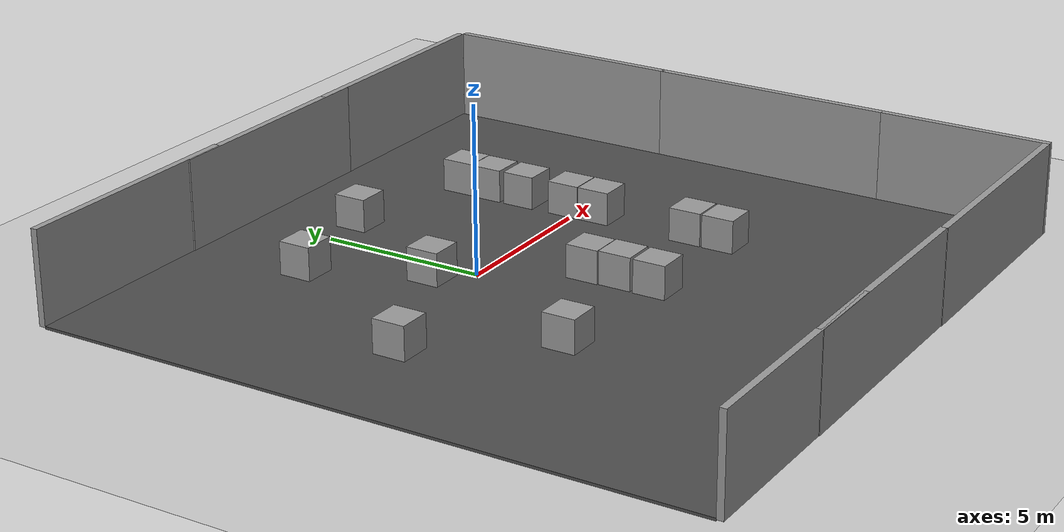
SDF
<sdf version="1.6">
 <world name="default">
  <light name="sun" type="directional">
   <pose>0 0 10 0 -0 0</pose>
   <diffuse>0.8 0.8 0.8 1</diffuse>
   <specular>0.1 0.1 0.1 1</specular>
   <attenuation>
    <range>1000</range>
    <constant>0.9</constant>
    <linear>0.01</linear>
    <quadratic>0.001</quadratic>
   </attenuation>
   <direction>-0.5 0.5 -1</direction>
  </light>
  <model name="ground_plane">
   <static>1</static>
   <link name="link">
    <collision name="collision">
     <geometry><plane><normal>0 0 1</normal><size>100 100</size></plane></geometry>
     <surface><friction><ode><mu>100</mu><mu2>50</mu2></ode></friction></surface>
    </collision>
    <visual name="visual">
     <cast_shadows>0</cast_shadows>
     <geometry><plane><normal>0 0 1</normal><size>100 100</size></plane></geometry>
     <material>
      <script><uri>file://media/materials/scripts/gazebo.material</uri><name>Gazebo/Grey</name></script>
     </material>
    </visual>
   </link>
  </model>
  <gravity>0 0 -9.8</gravity>
  <magnetic_field>6e-06 2.3e-05 -4.2e-05</magnetic_field>
  <atmosphere type="adiabatic"/>
  <physics name="default_physics" default="0" type="ode">
   <max_step_size>0.001</max_step_size>
   <real_time_factor>1</real_time_factor>
   <real_time_update_rate>1000</real_time_update_rate>
  </physics>
  <scene><ambient>0.4 0.4 0.4 1</ambient><background>0.7 0.7 0.7 1</background><shadows>1</shadows></scene>
  <spherical_coordinates>
   <surface_model>EARTH_WGS84</surface_model>
   <latitude_deg>0</latitude_deg>
   <longitude_deg>0</longitude_deg>
   <elevation>0</elevation>
   <heading_deg>0</heading_deg>
  </spherical_coordinates>
  <model name="grey_wall">
   <static>1</static>
   <link name="link">
    <pose>0 0 1.4 0 -0 0</pose>
    <collision name="collision"><geometry><box><size>7.5 0.2 2.8</size></box></geometry></collision>
    <visual name="visual">
     <cast_shadows>0</cast_shadows>
     <geometry><box><size>7.5 0.2 2.8</size></box></geometry>
     <material>
      <script>
       <uri>model://grey_wall/materials/scripts</uri>
       <uri>model://grey_wall/materials/textures</uri>
       <name>vrc/grey_wall</name>
      </script>
     </material>
    </visual>
   </link>
   <pose>0.992269 7.87079 0 0 -0 0</pose>
  </model>
  <model name="grey_wall_clone">
   <static>1</static>
   <link name="link">
    <pose>0 0 1.4 0 -0 0</pose>
    <collision name="collision"><geometry><box><size>7.5 0.2 2.8</size></box></geometry></collision>
    <visual name="visual">
     <cast_shadows>0</cast_shadows>
     <geometry><box><size>7.5 0.2 2.8</size></box></geometry>
     <material>
      <script>
       <uri>model://grey_wall/materials/scripts</uri>
       <uri>model://grey_wall/materials/textures</uri>
       <name>vrc/grey_wall</name>
      </script>
     </material>
    </visual>
   </link>
   <pose>7.36653 7.87416 0 0 -0 0</pose>
  </model>
  <model name="asphalt_plane">
   <static>1</static>
   <link name="link">
    <collision name="collision"><geometry><box><size>20 20 0.1</size></box></geometry></collision>
    <visual name="visual">
     <cast_shadows>0</cast_shadows>
     <geometry><box><size>20 20 0.1</size></box></geometry>
     <material>
      <script>
       <uri>model://asphalt_plane/materials/scripts</uri>
       <uri>model://asphalt_plane/materials/textures</uri>
       <name>vrc/asphalt</name>
      </script>
     </material>
    </visual>
   </link>
   <pose>1.10617 -2.19977 0 0 -0 0</pose>
  </model>
  <model name="grey_wall_clone_0">
   <static>1</static>
   <link name="link">
    <pose>0 0 1.4 0 -0 0</pose>
    <collision name="collision"><geometry><box><size>7.5 0.2 2.8</size></box></geometry></collision>
    <visual name="visual">
     <cast_shadows>0</cast_shadows>
     <geometry><box><size>7.5 0.2 2.8</size></box></geometry>
     <material>
      <script>
       <uri>model://grey_wall/materials/scripts</uri>
       <uri>model://grey_wall/materials/textures</uri>
       <name>vrc/grey_wall</name>
      </script>
     </material>
    </visual>
   </link>
   <pose>-5.13089 7.91776 0 0 -0 0</pose>
  </model>
  <model name="grey_wall_0">
   <static>1</static>
   <link name="link">
    <pose>0 0 1.4 0 -0 0</pose>
    <collision name="collision"><geometry><box><size>7.5 0.2 2.8</size></box></geometry></collision>
    <visual name="visual">
     <cast_shadows>0</cast_shadows>
     <geometry><box><size>7.5 0.2 2.8</size></box></geometry>
     <material>
      <script>
       <uri>model://grey_wall/materials/scripts</uri>
       <uri>model://grey_wall/materials/textures</uri>
       <name>vrc/grey_wall</name>
      </script>
     </material>
    </visual>
   </link>
   <pose>11.2014 4.01659 0 0 0 -1.57918</pose>
  </model>
  <model name="grey_wall_0_clone">
   <static>1</static>
   <link name="link">
    <pose>0 0 1.4 0 -0 0</pose>
    <collision name="collision"><geometry><box><size>7.5 0.2 2.8</size></box></geometry></collision>
    <visual name="visual">
     <cast_shadows>0</cast_shadows>
     <geometry><box><size>7.5 0.2 2.8</size></box></geometry>
     <material>
      <script>
       <uri>model://grey_wall/materials/scripts</uri>
       <uri>model://grey_wall/materials/textures</uri>
       <name>vrc/grey_wall</name>
      </script>
     </material>
    </visual>
   </link>
   <pose>11.1372 -3.41173 0 0 0 -1.57918</pose>
  </model>
  <model name="grey_wall_0_clone_0">
   <static>1</static>
   <link name="link">
    <pose>0 0 1.4 0 -0 0</pose>
    <collision name="collision"><geometry><box><size>7.5 0.2 2.8</size></box></geometry></collision>
    <visual name="visual">
     <cast_shadows>0</cast_shadows>
     <geometry><box><size>7.5 0.2 2.8</size></box></geometry>
     <material>
      <script>
       <uri>model://grey_wall/materials/scripts</uri>
       <uri>model://grey_wall/materials/textures</uri>
       <name>vrc/grey_wall</name>
      </script>
     </material>
    </visual>
   </link>
   <pose>11.0946 -8.67061 0 0 0 -1.57918</pose>
  </model>
  <model name="grey_wall_clone_0_clone">
   <static>1</static>
   <link name="link">
    <pose>0 0 1.4 0 -0 0</pose>
    <collision name="collision"><geometry><box><size>7.5 0.2 2.8</size></box></geometry></collision>
    <visual name="visual">
     <cast_shadows>0</cast_shadows>
     <geometry><box><size>7.5 0.2 2.8</size></box></geometry>
     <material>
      <script>
       <uri>model://grey_wall/materials/scripts</uri>
       <uri>model://grey_wall/materials/textures</uri>
       <name>vrc/grey_wall</name>
      </script>
     </material>
    </visual>
   </link>
   <pose>7.22766 -12.3299 0 0 -0 0</pose>
  </model>
  <model name="grey_wall_clone_0_clone_clone">
   <static>1</static>
   <link name="link">
    <pose>0 0 1.4 0 -0 0</pose>
    <collision name="collision"><geometry><box><size>7.5 0.2 2.8</size></box></geometry></collision>
    <visual name="visual">
     <cast_shadows>0</cast_shadows>
     <geometry><box><size>7.5 0.2 2.8</size></box></geometry>
     <material>
      <script>
       <uri>model://grey_wall/materials/scripts</uri>
       <uri>model://grey_wall/materials/textures</uri>
       <name>vrc/grey_wall</name>
      </script>
     </material>
    </visual>
   </link>
   <pose>-0.24505 -12.3092 0 0 -0 0</pose>
  </model>
  <model name="grey_wall_clone_0_clone_clone_clone">
   <static>1</static>
   <link name="link">
    <pose>0 0 1.4 0 -0 0</pose>
    <collision name="collision"><geometry><box><size>7.5 0.2 2.8</size></box></geometry></collision>
    <visual name="visual">
     <cast_shadows>0</cast_shadows>
     <geometry><box><size>7.5 0.2 2.8</size></box></geometry>
     <material>
      <script>
       <uri>model://grey_wall/materials/scripts</uri>
       <uri>model://grey_wall/materials/textures</uri>
       <name>vrc/grey_wall</name>
      </script>
     </material>
    </visual>
   </link>
   <pose>-5.12652 -12.2917 0 0 -0 0</pose>
  </model>
  <model name="unit_box_1_clone_0">
   <pose>5.42136 3.90069 0.55 0 -0 2e-05</pose>
   <link name="link">
    <inertial>
     <mass>1</mass>
     <inertia>
      <ixx>0.166667</ixx>
      <ixy>0</ixy>
      <ixz>0</ixz>
      <iyy>0.166667</iyy>
      <iyz>0</iyz>
      <izz>0.166667</izz>
     </inertia>
    </inertial>
    <collision name="collision"><geometry><box><size>1 1 1</size></box></geometry></collision>
    <visual name="visual">
     <geometry><box><size>1 1 1</size></box></geometry>
     <material>
      <script><name>Gazebo/Grey</name><uri>file://media/materials/scripts/gazebo.material</uri></script>
     </material>
    </visual>
   </link>
  </model>
  <model name="unit_box_1_clone_1">
   <pose>5.43773 0.201977 0.55 0 -0 1.9e-05</pose>
   <link name="link">
    <inertial>
     <mass>1</mass>
     <inertia>
      <ixx>0.166667</ixx>
      <ixy>0</ixy>
      <ixz>0</ixz>
      <iyy>0.166667</iyy>
      <iyz>0</iyz>
      <izz>0.166667</izz>
     </inertia>
    </inertial>
    <collision name="collision"><geometry><box><size>1 1 1</size></box></geometry></collision>
    <visual name="visual">
     <geometry><box><size>1 1 1</size></box></geometry>
     <material>
      <script><name>Gazebo/Grey</name><uri>file://media/materials/scripts/gazebo.material</uri></script>
     </material>
    </visual>
   </link>
  </model>
  <model name="unit_box_1_clone_2">
   <pose>5.44359 -0.821512 0.55 0 -0 1.9e-05</pose>
   <link name="link">
    <inertial>
     <mass>1</mass>
     <inertia>
      <ixx>0.166667</ixx>
      <ixy>0</ixy>
      <ixz>0</ixz>
      <iyy>0.166667</iyy>
      <iyz>0</iyz>
      <izz>0.166667</izz>
     </inertia>
    </inertial>
    <collision name="collision"><geometry><box><size>1 1 1</size></box></geometry></collision>
    <visual name="visual">
     <geometry><box><size>1 1 1</size></box></geometry>
     <material>
      <script><name>Gazebo/Grey</name><uri>file://media/materials/scripts/gazebo.material</uri></script>
     </material>
    </visual>
   </link>
  </model>
  <model name="unit_box_1_clone_5">
   <pose>5.41324 -3.8937 0.55 0 -0 1.7e-05</pose>
   <link name="link">
    <inertial>
     <mass>1</mass>
     <inertia>
      <ixx>0.166667</ixx>
      <ixy>0</ixy>
      <ixz>0</ixz>
      <iyy>0.166667</iyy>
      <iyz>0</iyz>
      <izz>0.166667</izz>
     </inertia>
    </inertial>
    <collision name="collision"><geometry><box><size>1 1 1</size></box></geometry></collision>
    <visual name="visual">
     <geometry><box><size>1 1 1</size></box></geometry>
     <material>
      <script><name>Gazebo/Grey</name><uri>file://media/materials/scripts/gazebo.material</uri></script>
     </material>
    </visual>
   </link>
  </model>
  <model name="unit_box_1_clone_6">
   <pose>5.40379 -4.9472 0.55 0 -0 1.6e-05</pose>
   <link name="link">
    <inertial>
     <mass>1</mass>
     <inertia>
      <ixx>0.166667</ixx>
      <ixy>0</ixy>
      <ixz>0</ixz>
      <iyy>0.166667</iyy>
      <iyz>0</iyz>
      <izz>0.166667</izz>
     </inertia>
    </inertial>
    <collision name="collision"><geometry><box><size>1 1 1</size></box></geometry></collision>
    <visual name="visual">
     <geometry><box><size>1 1 1</size></box></geometry>
     <material>
      <script><name>Gazebo/Grey</name><uri>file://media/materials/scripts/gazebo.material</uri></script>
     </material>
    </visual>
   </link>
  </model>
  <model name="unit_box_1_clone_11">
   <pose>1.54303 -2.76909 0.55 0 -0 1.3e-05</pose>
   <link name="link">
    <inertial>
     <mass>1</mass>
     <inertia>
      <ixx>0.166667</ixx>
      <ixy>0</ixy>
      <ixz>0</ixz>
      <iyy>0.166667</iyy>
      <iyz>0</iyz>
      <izz>0.166667</izz>
     </inertia>
    </inertial>
    <collision name="collision"><geometry><box><size>1 1 1</size></box></geometry></collision>
    <visual name="visual">
     <geometry><box><size>1 1 1</size></box></geometry>
     <material>
      <script><name>Gazebo/Grey</name><uri>file://media/materials/scripts/gazebo.material</uri></script>
     </material>
    </visual>
   </link>
  </model>
  <model name="unit_box_1_clone_12">
   <pose>1.57815 -3.78667 0.55 0 -0 1.2e-05</pose>
   <link name="link">
    <inertial>
     <mass>1</mass>
     <inertia>
      <ixx>0.166667</ixx>
      <ixy>0</ixy>
      <ixz>0</ixz>
      <iyy>0.166667</iyy>
      <iyz>0</iyz>
      <izz>0.166667</izz>
     </inertia>
    </inertial>
    <collision name="collision"><geometry><box><size>1 1 1</size></box></geometry></collision>
    <visual name="visual">
     <geometry><box><size>1 1 1</size></box></geometry>
     <material>
      <script><name>Gazebo/Grey</name><uri>file://media/materials/scripts/gazebo.material</uri></script>
     </material>
    </visual>
   </link>
  </model>
  <model name="unit_box_1_clone_13">
   <pose>1.55402 -4.88376 0.55 0 -0 1.2e-05</pose>
   <link name="link">
    <inertial>
     <mass>1</mass>
     <inertia>
      <ixx>0.166667</ixx>
      <ixy>0</ixy>
      <ixz>0</ixz>
      <iyy>0.166667</iyy>
      <iyz>0</iyz>
      <izz>0.166667</izz>
     </inertia>
    </inertial>
    <collision name="collision"><geometry><box><size>1 1 1</size></box></geometry></collision>
    <visual name="visual">
     <geometry><box><size>1 1 1</size></box></geometry>
     <material>
      <script><name>Gazebo/Grey</name><uri>file://media/materials/scripts/gazebo.material</uri></script>
     </material>
    </visual>
   </link>
  </model>
  <model name="unit_box_1_clone_4_clone">
   <pose>5.39548 2.8786 0.55 0 -0 1.8e-05</pose>
   <link name="link">
    <inertial>
     <mass>1</mass>
     <inertia>
      <ixx>0.166667</ixx>
      <ixy>0</ixy>
      <ixz>0</ixz>
      <iyy>0.166667</iyy>
      <iyz>0</iyz>
      <izz>0.166667</izz>
     </inertia>
    </inertial>
    <collision name="collision"><geometry><box><size>1 1 1</size></box></geometry></collision>
    <visual name="visual">
     <geometry><box><size>1 1 1</size></box></geometry>
     <material>
      <script><name>Gazebo/Grey</name><uri>file://media/materials/scripts/gazebo.material</uri></script>
     </material>
    </visual>
   </link>
  </model>
  <model name="unit_box_1_clone_4_clone_0">
   <pose>5.40188 1.73962 0.55 0 -0 1.7e-05</pose>
   <link name="link">
    <inertial>
     <mass>1</mass>
     <inertia>
      <ixx>0.166667</ixx>
      <ixy>0</ixy>
      <ixz>0</ixz>
      <iyy>0.166667</iyy>
      <iyz>0</iyz>
      <izz>0.166667</izz>
     </inertia>
    </inertial>
    <collision name="collision"><geometry><box><size>1 1 1</size></box></geometry></collision>
    <visual name="visual">
     <geometry><box><size>1 1 1</size></box></geometry>
     <material>
      <script><name>Gazebo/Grey</name><uri>file://media/materials/scripts/gazebo.material</uri></script>
     </material>
    </visual>
   </link>
  </model>
  <model name="unit_box_1_clone_4_clone_1">
   <pose>1.3289 4.94179 0.549995 1e-05 -0 1.6e-05</pose>
   <link name="link">
    <inertial>
     <mass>1</mass>
     <inertia>
      <ixx>0.166667</ixx>
      <ixy>0</ixy>
      <ixz>0</ixz>
      <iyy>0.166667</iyy>
      <iyz>0</iyz>
      <izz>0.166667</izz>
     </inertia>
    </inertial>
    <collision name="collision"><geometry><box><size>1 1 1</size></box></geometry></collision>
    <visual name="visual">
     <geometry><box><size>1 1 1</size></box></geometry>
     <material>
      <script><name>Gazebo/Grey</name><uri>file://media/materials/scripts/gazebo.material</uri></script>
     </material>
    </visual>
   </link>
  </model>
  <model name="unit_box_1_clone_4_clone_2">
   <pose>-0.897456 0.887318 0.55 0 -0 2.1e-05</pose>
   <link name="link">
    <inertial>
     <mass>1</mass>
     <inertia>
      <ixx>0.166667</ixx>
      <ixy>0</ixy>
      <ixz>0</ixz>
      <iyy>0.166667</iyy>
      <iyz>0</iyz>
      <izz>0.166667</izz>
     </inertia>
    </inertial>
    <collision name="collision"><geometry><box><size>1 1 1</size></box></geometry></collision>
    <visual name="visual">
     <geometry><box><size>1 1 1</size></box></geometry>
     <material>
      <script><name>Gazebo/Grey</name><uri>file://media/materials/scripts/gazebo.material</uri></script>
     </material>
    </visual>
   </link>
  </model>
  <model name="unit_box_1_clone_4_clone_3">
   <pose>-2.70659 -4.60276 0.55 0 -0 1.7e-05</pose>
   <link name="link">
    <inertial>
     <mass>1</mass>
     <inertia>
      <ixx>0.166667</ixx>
      <ixy>0</ixy>
      <ixz>0</ixz>
      <iyy>0.166667</iyy>
      <iyz>0</iyz>
      <izz>0.166667</izz>
     </inertia>
    </inertial>
    <collision name="collision"><geometry><box><size>1 1 1</size></box></geometry></collision>
    <visual name="visual">
     <geometry><box><size>1 1 1</size></box></geometry>
     <material>
      <script><name>Gazebo/Grey</name><uri>file://media/materials/scripts/gazebo.material</uri></script>
     </material>
    </visual>
   </link>
  </model>
  <model name="unit_box_1_clone_4_clone_4">
   <pose>-2.38398 4.12336 0.55 0 -0 2e-05</pose>
   <link name="link">
    <inertial>
     <mass>1</mass>
     <inertia>
      <ixx>0.166667</ixx>
      <ixy>0</ixy>
      <ixz>0</ixz>
      <iyy>0.166667</iyy>
      <iyz>0</iyz>
      <izz>0.166667</izz>
     </inertia>
    </inertial>
    <collision name="collision"><geometry><box><size>1 1 1</size></box></geometry></collision>
    <visual name="visual">
     <geometry><box><size>1 1 1</size></box></geometry>
     <material>
      <script><name>Gazebo/Grey</name><uri>file://media/materials/scripts/gazebo.material</uri></script>
     </material>
    </visual>
   </link>
  </model>
  <model name="unit_box_1_clone_4_clone_5">
   <pose>-5.2952 -1.09141 0.55 0 -0 1.7e-05</pose>
   <link name="link">
    <inertial>
     <mass>1</mass>
     <inertia>
      <ixx>0.166667</ixx>
      <ixy>0</ixy>
      <ixz>0</ixz>
      <iyy>0.166667</iyy>
      <iyz>0</iyz>
      <izz>0.166667</izz>
     </inertia>
    </inertial>
    <collision name="collision"><geometry><box><size>1 1 1</size></box></geometry></collision>
    <visual name="visual">
     <geometry><box><size>1 1 1</size></box></geometry>
     <material>
      <script><name>Gazebo/Grey</name><uri>file://media/materials/scripts/gazebo.material</uri></script>
     </material>
    </visual>
   </link>
  </model>
 </world>
</sdf>
